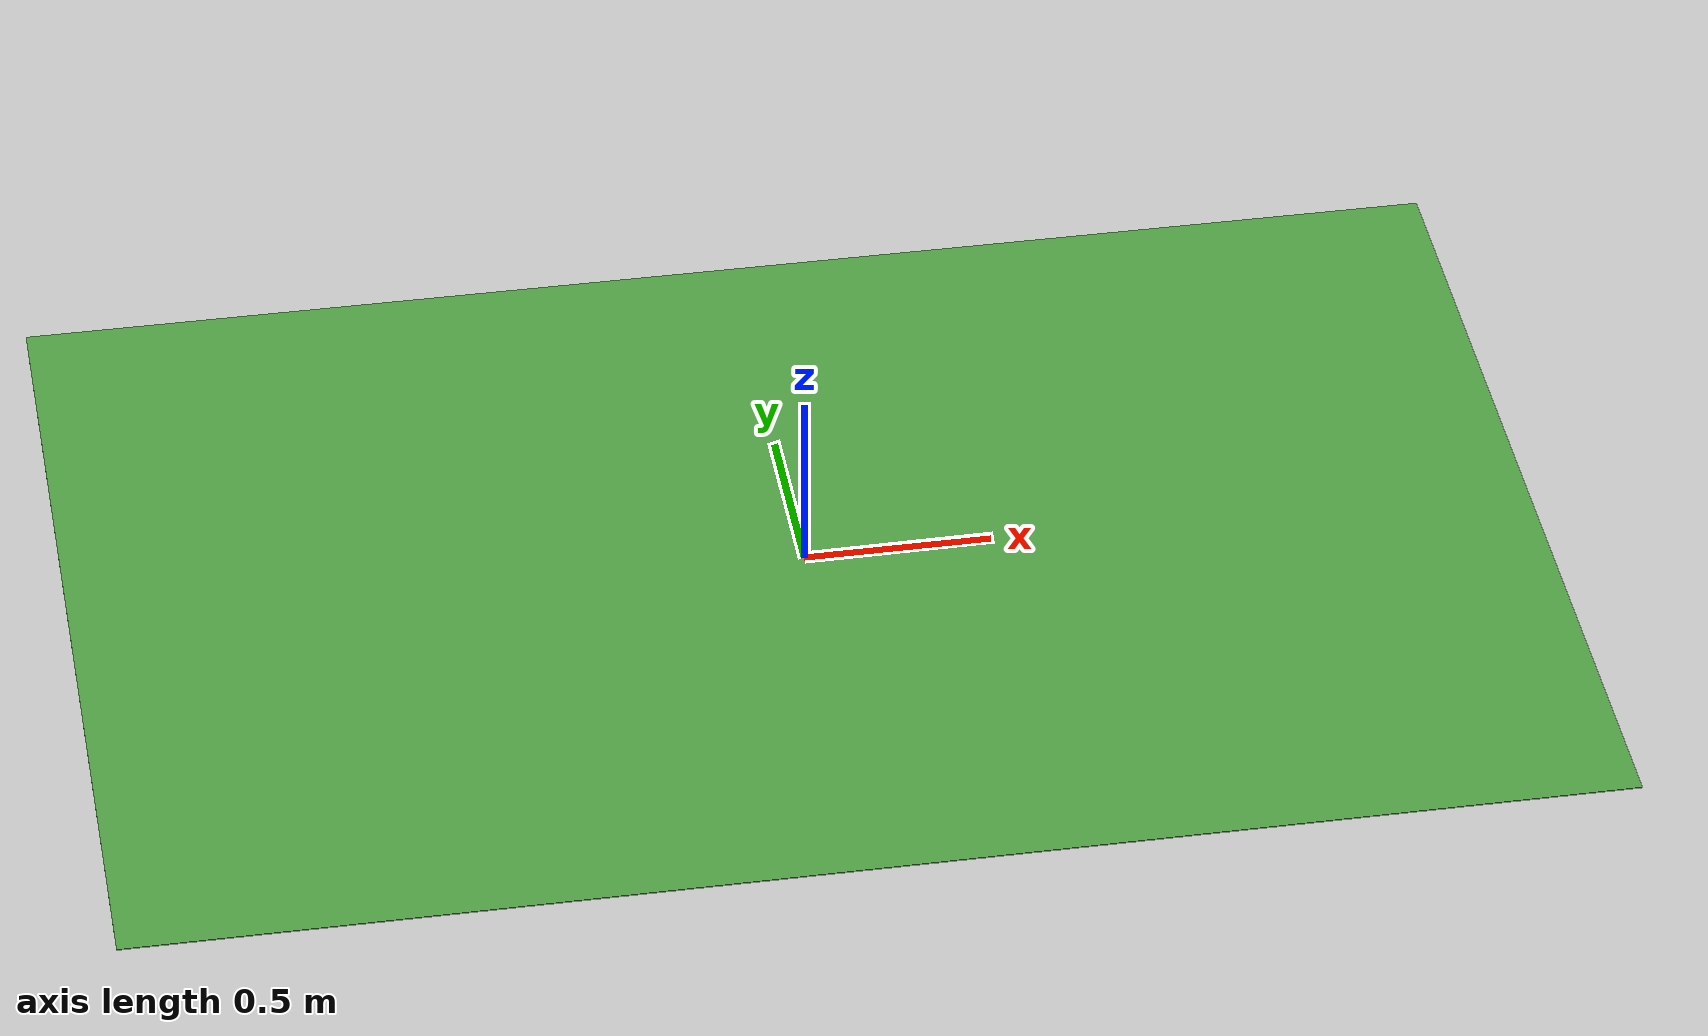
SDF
<?xml version="1.0" ?>
<sdf version="1.5">
  <model name="robocup_3d_field">
    <static>true</static>
    <link name="field">
      <pose>0 0 0.01 0 0 0</pose>
      <collision name="collision">
        <geometry>
          <plane>
            <normal>0 0 1</normal>
            <size>3.9 2.6</size>
          </plane>
        </geometry>
        <surface>
          <friction>
            <ode>
              <mu>1</mu>
              <mu2>0.5</mu2>
            </ode>
          </friction>
        </surface>
      </collision>
      <visual name="carpet">
        <cast_shadows>false</cast_shadows>
        <geometry>
          <plane>
            <normal>0 0 1</normal>
            <size>3.9 2.6</size>
          </plane>
        </geometry>
        <material>
          <script>
            <uri>model://robocup_3Dsim_field/materials/scripts/</uri>
            <uri>model://robocup_3Dsim_field/materials/textures/</uri>
            <name>RoboCup/Grass</name>
          </script>
        </material>
      </visual>
    </link>
  </model>
</sdf>
